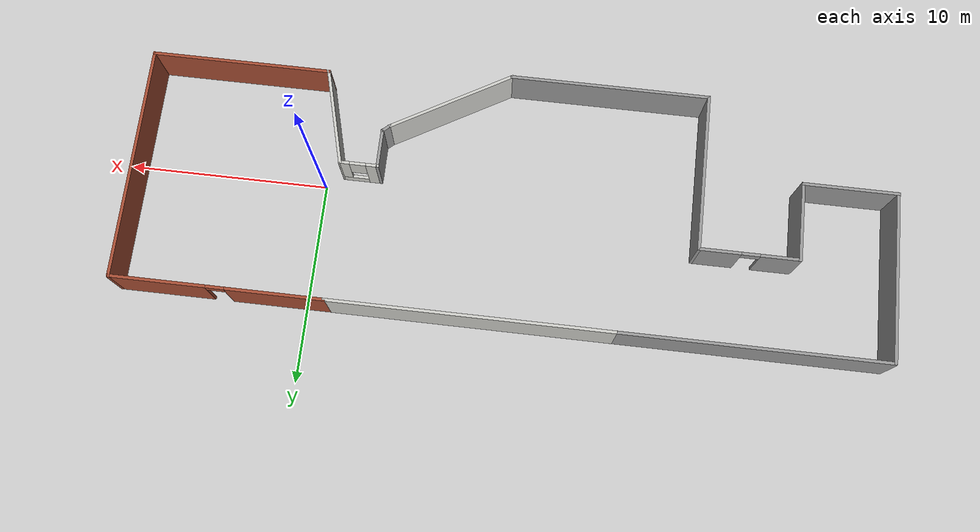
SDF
<sdf version="1.7">
 <world name="default">
  <light name="sun" type="directional">
   <pose>0 0 10 0 -0 0</pose>
   <diffuse>0.8 0.8 0.8 1</diffuse>
   <specular>0.2 0.2 0.2 1</specular>
   <attenuation>
    <range>1000</range>
    <constant>0.9</constant>
    <linear>0.01</linear>
    <quadratic>0.001</quadratic>
   </attenuation>
   <direction>-0.5 0.1 -0.9</direction>
   <spot><inner_angle>0</inner_angle><outer_angle>0</outer_angle><falloff>0</falloff></spot>
  </light>
  <model name="ground_plane">
   <static>1</static>
   <link name="link">
    <collision name="collision">
     <geometry><plane><normal>0 0 1</normal><size>100 100</size></plane></geometry>
     <surface>
      <contact><collide_bitmask>65535</collide_bitmask></contact>
      <friction><ode><mu>100</mu><mu2>50</mu2></ode></friction>
     </surface>
    </collision>
    <visual name="visual">
     <cast_shadows>0</cast_shadows>
     <geometry><plane><normal>0 0 1</normal><size>100 100</size></plane></geometry>
     <material>
      <script><uri>file://media/materials/scripts/gazebo.material</uri><name>Gazebo/Grey</name></script>
     </material>
    </visual>
   </link>
  </model>
  <gravity>0 0 -9.8</gravity>
  <magnetic_field>6e-06 2.3e-05 -4.2e-05</magnetic_field>
  <atmosphere type="adiabatic"/>
  <physics type="ode">
   <max_step_size>0.001</max_step_size>
   <real_time_factor>1</real_time_factor>
   <real_time_update_rate>1000</real_time_update_rate>
  </physics>
  <scene><ambient>0.4 0.4 0.4 1</ambient><background>0.7 0.7 0.7 1</background><shadows>1</shadows></scene>
  <audio><device>default</device></audio>
  <spherical_coordinates>
   <surface_model>EARTH_WGS84</surface_model>
   <latitude_deg>0</latitude_deg>
   <longitude_deg>0</longitude_deg>
   <elevation>0</elevation>
   <heading_deg>0</heading_deg>
  </spherical_coordinates>
  <model name="building1">
   <pose>-9.43473 0.096534 0 0 -0 0</pose>
   <link name="Wall_0">
    <collision name="Wall_0_Collision">
     <geometry><box><size>2 0.15 2.5</size></box></geometry>
     <pose>0 0 1.25 0 -0 0</pose>
    </collision>
    <visual name="Wall_0_Visual">
     <pose>0 0 1.25 0 -0 0</pose>
     <geometry><box><size>2 0.15 2.5</size></box></geometry>
     <material>
      <script><uri>file://media/materials/scripts/gazebo.material</uri><name>Gazebo/Grey</name></script>
      <ambient>1 1 1 1</ambient>
     </material>
     <meta><layer>0</layer></meta>
    </visual>
    <pose>6.69473 -1.65153 0 0 -0 1.5708</pose>
   </link>
   <link name="Wall_1">
    <pose>7.61973 -0.726534 0 0 -0 0</pose>
    <visual name="Wall_1_Visual_0">
     <pose>-0.672613 0 1.25 0 -0 0</pose>
     <geometry><box><size>0.654775 0.15 2.5</size></box></geometry>
     <material>
      <script><uri>file://media/materials/scripts/gazebo.material</uri><name>Gazebo/CeilingTiled</name></script>
      <ambient>1 1 1 1</ambient>
     </material>
     <meta><layer>0</layer></meta>
    </visual>
    <collision name="Wall_1_Collision_0">
     <geometry><box><size>0.654775 0.15 2.5</size></box></geometry>
     <pose>-0.672613 0 1.25 0 -0 0</pose>
    </collision>
    <visual name="Wall_1_Visual_1">
     <pose>0.327387 0 0.25 0 -0 0</pose>
     <geometry><box><size>1.34522 0.15 0.5</size></box></geometry>
     <material>
      <script><uri>file://media/materials/scripts/gazebo.material</uri><name>Gazebo/CeilingTiled</name></script>
      <ambient>1 1 1 1</ambient>
     </material>
     <meta><layer>0</layer></meta>
    </visual>
    <collision name="Wall_1_Collision_1">
     <geometry><box><size>1.34522 0.15 0.5</size></box></geometry>
     <pose>0.327387 0 0.25 0 -0 0</pose>
    </collision>
    <visual name="Wall_1_Visual_2">
     <pose>0.727387 0 1.5 0 -0 0</pose>
     <geometry><box><size>0.545225 0.15 2</size></box></geometry>
     <material>
      <script><uri>file://media/materials/scripts/gazebo.material</uri><name>Gazebo/CeilingTiled</name></script>
      <ambient>1 1 1 1</ambient>
     </material>
     <meta><layer>0</layer></meta>
    </visual>
    <collision name="Wall_1_Collision_2">
     <geometry><box><size>0.545225 0.15 2</size></box></geometry>
     <pose>0.727387 0 1.5 0 -0 0</pose>
    </collision>
    <visual name="Wall_1_Visual_3">
     <pose>0.054775 0 1.9 0 -0 0</pose>
     <geometry><box><size>0.8 0.15 1.2</size></box></geometry>
     <material>
      <script><uri>file://media/materials/scripts/gazebo.material</uri><name>Gazebo/CeilingTiled</name></script>
      <ambient>1 1 1 1</ambient>
     </material>
     <meta><layer>0</layer></meta>
    </visual>
    <collision name="Wall_1_Collision_3">
     <geometry><box><size>0.8 0.15 1.2</size></box></geometry>
     <pose>0.054775 0 1.9 0 -0 0</pose>
    </collision>
   </link>
   <link name="Wall_10">
    <collision name="Wall_10_Collision">
     <geometry><box><size>4 0.15 2.5</size></box></geometry>
     <pose>0 0 1.25 0 -0 0</pose>
    </collision>
    <visual name="Wall_10_Visual">
     <pose>0 0 1.25 0 -0 0</pose>
     <geometry><box><size>4 0.15 2.5</size></box></geometry>
     <material>
      <script><uri>file://media/materials/scripts/gazebo.material</uri><name>Gazebo/Grey</name></script>
      <ambient>1 1 1 1</ambient>
     </material>
     <meta><layer>0</layer></meta>
    </visual>
    <pose>-14.05 -0.236274 0 0 -0 1.5708</pose>
   </link>
   <link name="Wall_11">
    <pose>-11.625 1.68873 0 0 -0 0</pose>
    <visual name="Wall_11_Visual_0">
     <pose>-1.50734 0 1.25 0 -0 0</pose>
     <geometry><box><size>1.98532 0.15 2.5</size></box></geometry>
     <material>
      <script><uri>file://media/materials/scripts/gazebo.material</uri><name>Gazebo/Grey</name></script>
      <ambient>1 1 1 1</ambient>
     </material>
     <meta><layer>0</layer></meta>
    </visual>
    <collision name="Wall_11_Collision_0">
     <geometry><box><size>1.98532 0.15 2.5</size></box></geometry>
     <pose>-1.50734 0 1.25 0 -0 0</pose>
    </collision>
    <visual name="Wall_11_Visual_1">
     <pose>1.44266 0 1.25 0 -0 0</pose>
     <geometry><box><size>2.11468 0.15 2.5</size></box></geometry>
     <material>
      <script><uri>file://media/materials/scripts/gazebo.material</uri><name>Gazebo/Grey</name></script>
      <ambient>1 1 1 1</ambient>
     </material>
     <meta><layer>0</layer></meta>
    </visual>
    <collision name="Wall_11_Collision_1">
     <geometry><box><size>2.11468 0.15 2.5</size></box></geometry>
     <pose>1.44266 0 1.25 0 -0 0</pose>
    </collision>
    <visual name="Wall_11_Visual_2">
     <pose>-0.064678 0 2.25 0 -0 0</pose>
     <geometry><box><size>0.9 0.15 0.5</size></box></geometry>
     <material>
      <script><uri>file://media/materials/scripts/gazebo.material</uri><name>Gazebo/Grey</name></script>
      <ambient>1 1 1 1</ambient>
     </material>
     <meta><layer>0</layer></meta>
    </visual>
    <collision name="Wall_11_Collision_2">
     <geometry><box><size>0.9 0.15 0.5</size></box></geometry>
     <pose>-0.064678 0 2.25 0 -0 0</pose>
    </collision>
   </link>
   <link name="Wall_12">
    <collision name="Wall_12_Collision">
     <geometry><box><size>8 0.15 2.5</size></box></geometry>
     <pose>0 0 1.25 0 -0 0</pose>
    </collision>
    <visual name="Wall_12_Visual">
     <pose>0 0 1.25 0 -0 0</pose>
     <geometry><box><size>8 0.15 2.5</size></box></geometry>
     <material>
      <script><uri>file://media/materials/scripts/gazebo.material</uri><name>Gazebo/Grey</name></script>
      <ambient>1 1 1 1</ambient>
     </material>
     <meta><layer>0</layer></meta>
    </visual>
    <pose>-9.2 -2.23627 0 0 -0 -1.5708</pose>
   </link>
   <link name="Wall_13">
    <collision name="Wall_13_Collision">
     <geometry><box><size>10 0.15 2.5</size></box></geometry>
     <pose>0 0 1.25 0 -0 0</pose>
    </collision>
    <visual name="Wall_13_Visual">
     <pose>0 0 1.25 0 -0 0</pose>
     <geometry><box><size>10 0.15 2.5</size></box></geometry>
     <material>
      <script><uri>file://media/materials/scripts/gazebo.material</uri><name>Gazebo/Grey</name></script>
      <ambient>1 1 1 1</ambient>
     </material>
     <meta><layer>0</layer></meta>
    </visual>
    <pose>-4.275 -6.16127 0 0 -0 0</pose>
   </link>
   <link name="Wall_14">
    <collision name="Wall_14_Collision">
     <geometry><box><size>6.75 0.15 2.5</size></box></geometry>
     <pose>0 0 1.25 0 -0 0</pose>
    </collision>
    <visual name="Wall_14_Visual">
     <pose>0 0 1.25 0 -0 0</pose>
     <geometry><box><size>6.75 0.15 2.5</size></box></geometry>
     <material>
      <script><uri>file://media/materials/scripts/gazebo.material</uri><name>Gazebo/CeilingTiled</name></script>
      <ambient>1 1 1 1</ambient>
     </material>
     <meta><layer>0</layer></meta>
    </visual>
    <pose>3.50788 -4.51127 0 0 -0 0.523599</pose>
   </link>
   <link name="Wall_15">
    <collision name="Wall_15_Collision">
     <geometry><box><size>0.585077 0.15 2.5</size></box></geometry>
     <pose>0 0 1.25 0 -0 0</pose>
    </collision>
    <visual name="Wall_15_Visual">
     <pose>0 0 1.25 0 -0 0</pose>
     <geometry><box><size>0.585077 0.15 2.5</size></box></geometry>
     <material>
      <script><uri>file://media/materials/scripts/gazebo.material</uri><name>Gazebo/Grey</name></script>
      <ambient>1 1 1 1</ambient>
     </material>
     <meta><layer>0</layer></meta>
    </visual>
    <pose>6.53025 -2.7189 0 0 -0 0.713468</pose>
   </link>
   <link name="Wall_2">
    <collision name="Wall_2_Collision">
     <geometry><box><size>5 0.15 2.5</size></box></geometry>
     <pose>0 0 1.25 0 -0 0</pose>
    </collision>
    <visual name="Wall_2_Visual">
     <pose>0 0 1.25 0 -0 0</pose>
     <geometry><box><size>5 0.15 2.5</size></box></geometry>
     <material>
      <script><uri>file://media/materials/scripts/gazebo.material</uri><name>Gazebo/CeilingTiled</name></script>
      <ambient>1 1 1 1</ambient>
     </material>
     <meta><layer>0</layer></meta>
    </visual>
    <pose>9.17236 -3.0689 0 0 -0 -1.309</pose>
   </link>
   <link name="Wall_3">
    <collision name="Wall_3_Collision">
     <geometry><box><size>9 0.15 2.5</size></box></geometry>
     <pose>0 0 1.25 0 -0 0</pose>
    </collision>
    <visual name="Wall_3_Visual">
     <pose>0 0 1.25 0 -0 0</pose>
     <geometry><box><size>9 0.15 2.5</size></box></geometry>
     <material>
      <script><uri>file://media/materials/scripts/gazebo.material</uri><name>Gazebo/Bricks</name></script>
      <ambient>1 1 1 1</ambient>
     </material>
     <meta><layer>0</layer></meta>
    </visual>
    <pose>14.225 -5.41127 0 0 -0 0</pose>
   </link>
   <link name="Wall_4">
    <collision name="Wall_4_Collision">
     <geometry><box><size>11.75 0.15 2.5</size></box></geometry>
     <pose>0 0 1.25 0 -0 0</pose>
    </collision>
    <visual name="Wall_4_Visual">
     <pose>0 0 1.25 0 -0 0</pose>
     <geometry><box><size>11.75 0.15 2.5</size></box></geometry>
     <material>
      <script><uri>file://media/materials/scripts/gazebo.material</uri><name>Gazebo/Bricks</name></script>
      <ambient>1 1 1 1</ambient>
     </material>
     <meta><layer>0</layer></meta>
    </visual>
    <pose>18.65 0.388726 0 0 -0 1.5708</pose>
   </link>
   <link name="Wall_5">
    <pose>13.475 6.18873 0 0 -0 3.14159</pose>
    <visual name="Wall_5_Visual_0">
     <pose>-2.87233 0 1.25 0 -0 0</pose>
     <geometry><box><size>4.75535 0.15 2.5</size></box></geometry>
     <material>
      <script><uri>file://media/materials/scripts/gazebo.material</uri><name>Gazebo/Bricks</name></script>
      <ambient>1 1 1 1</ambient>
     </material>
     <meta><layer>0</layer></meta>
    </visual>
    <collision name="Wall_5_Collision_0">
     <geometry><box><size>4.75535 0.15 2.5</size></box></geometry>
     <pose>-2.87233 0 1.25 0 -0 0</pose>
    </collision>
    <visual name="Wall_5_Visual_1">
     <pose>2.82768 0 1.25 0 -0 0</pose>
     <geometry><box><size>4.84465 0.15 2.5</size></box></geometry>
     <material>
      <script><uri>file://media/materials/scripts/gazebo.material</uri><name>Gazebo/Bricks</name></script>
      <ambient>1 1 1 1</ambient>
     </material>
     <meta><layer>0</layer></meta>
    </visual>
    <collision name="Wall_5_Collision_1">
     <geometry><box><size>4.84465 0.15 2.5</size></box></geometry>
     <pose>2.82768 0 1.25 0 -0 0</pose>
    </collision>
    <visual name="Wall_5_Visual_2">
     <pose>-0.044651 0 2.25 0 -0 0</pose>
     <geometry><box><size>0.9 0.15 0.5</size></box></geometry>
     <material>
      <script><uri>file://media/materials/scripts/gazebo.material</uri><name>Gazebo/Bricks</name></script>
      <ambient>1 1 1 1</ambient>
     </material>
     <meta><layer>0</layer></meta>
    </visual>
    <collision name="Wall_5_Collision_2">
     <geometry><box><size>0.9 0.15 0.5</size></box></geometry>
     <pose>-0.044651 0 2.25 0 -0 0</pose>
    </collision>
   </link>
   <link name="Wall_6">
    <collision name="Wall_6_Collision">
     <geometry><box><size>14 0.15 2.5</size></box></geometry>
     <pose>0 0 1.25 0 -0 0</pose>
    </collision>
    <visual name="Wall_6_Visual">
     <pose>0 0 1.25 0 -0 0</pose>
     <geometry><box><size>14 0.15 2.5</size></box></geometry>
     <material>
      <script><uri>file://media/materials/scripts/gazebo.material</uri><name>Gazebo/CeilingTiled</name></script>
      <ambient>1 1 1 1</ambient>
     </material>
     <meta><layer>0</layer></meta>
    </visual>
    <pose>1.375 6.18873 0 0 -0 3.14159</pose>
   </link>
   <link name="Wall_7">
    <collision name="Wall_7_Collision">
     <geometry><box><size>13.25 0.15 2.5</size></box></geometry>
     <pose>0 0 1.25 0 -0 0</pose>
    </collision>
    <visual name="Wall_7_Visual">
     <pose>0 0 1.25 0 -0 0</pose>
     <geometry><box><size>13.25 0.15 2.5</size></box></geometry>
     <material>
      <script><uri>file://media/materials/scripts/gazebo.material</uri><name>Gazebo/Grey</name></script>
      <ambient>1 1 1 1</ambient>
     </material>
     <meta><layer>0</layer></meta>
    </visual>
    <pose>-12.1 6.18873 0 0 -0 3.14159</pose>
   </link>
   <link name="Wall_8">
    <collision name="Wall_8_Collision">
     <geometry><box><size>8.5 0.15 2.5</size></box></geometry>
     <pose>0 0 1.25 0 -0 0</pose>
    </collision>
    <visual name="Wall_8_Visual">
     <pose>0 0 1.25 0 -0 0</pose>
     <geometry><box><size>8.5 0.15 2.5</size></box></geometry>
     <material>
      <script><uri>file://media/materials/scripts/gazebo.material</uri><name>Gazebo/Grey</name></script>
      <ambient>1 1 1 1</ambient>
     </material>
     <meta><layer>0</layer></meta>
    </visual>
    <pose>-18.65 2.01373 0 0 -0 -1.5708</pose>
   </link>
   <link name="Wall_9">
    <collision name="Wall_9_Collision">
     <geometry><box><size>4.75 0.15 2.5</size></box></geometry>
     <pose>0 0 1.25 0 -0 0</pose>
    </collision>
    <visual name="Wall_9_Visual">
     <pose>0 0 1.25 0 -0 0</pose>
     <geometry><box><size>4.75 0.15 2.5</size></box></geometry>
     <material>
      <script><uri>file://media/materials/scripts/gazebo.material</uri><name>Gazebo/Grey</name></script>
      <ambient>1 1 1 1</ambient>
     </material>
     <meta><layer>0</layer></meta>
    </visual>
    <pose>-16.35 -2.16127 0 0 -0 0</pose>
   </link>
   <static>1</static>
  </model>
 </world>
</sdf>
